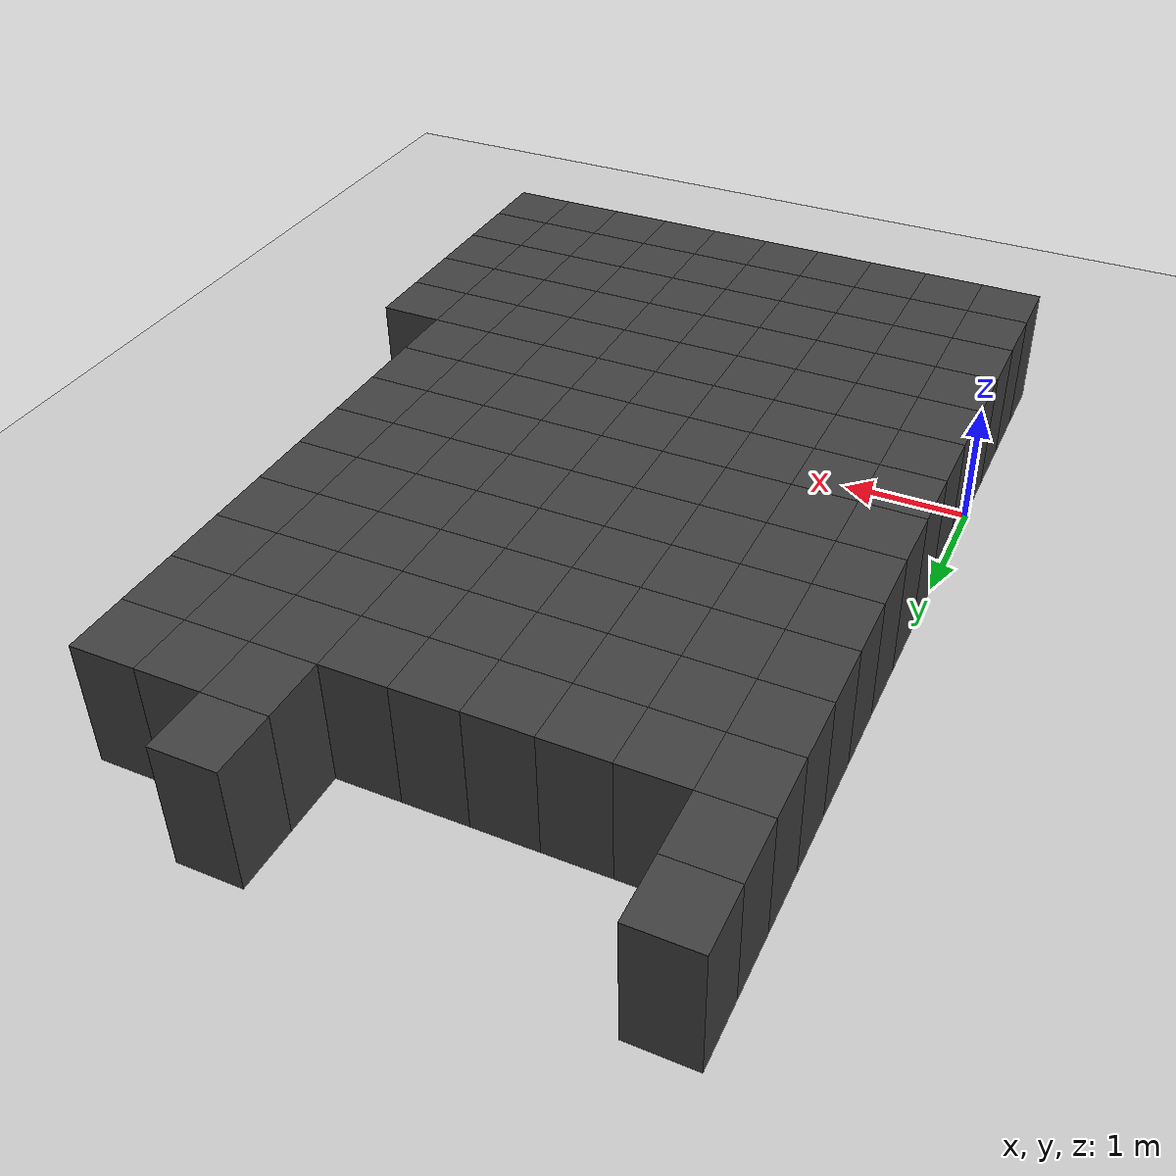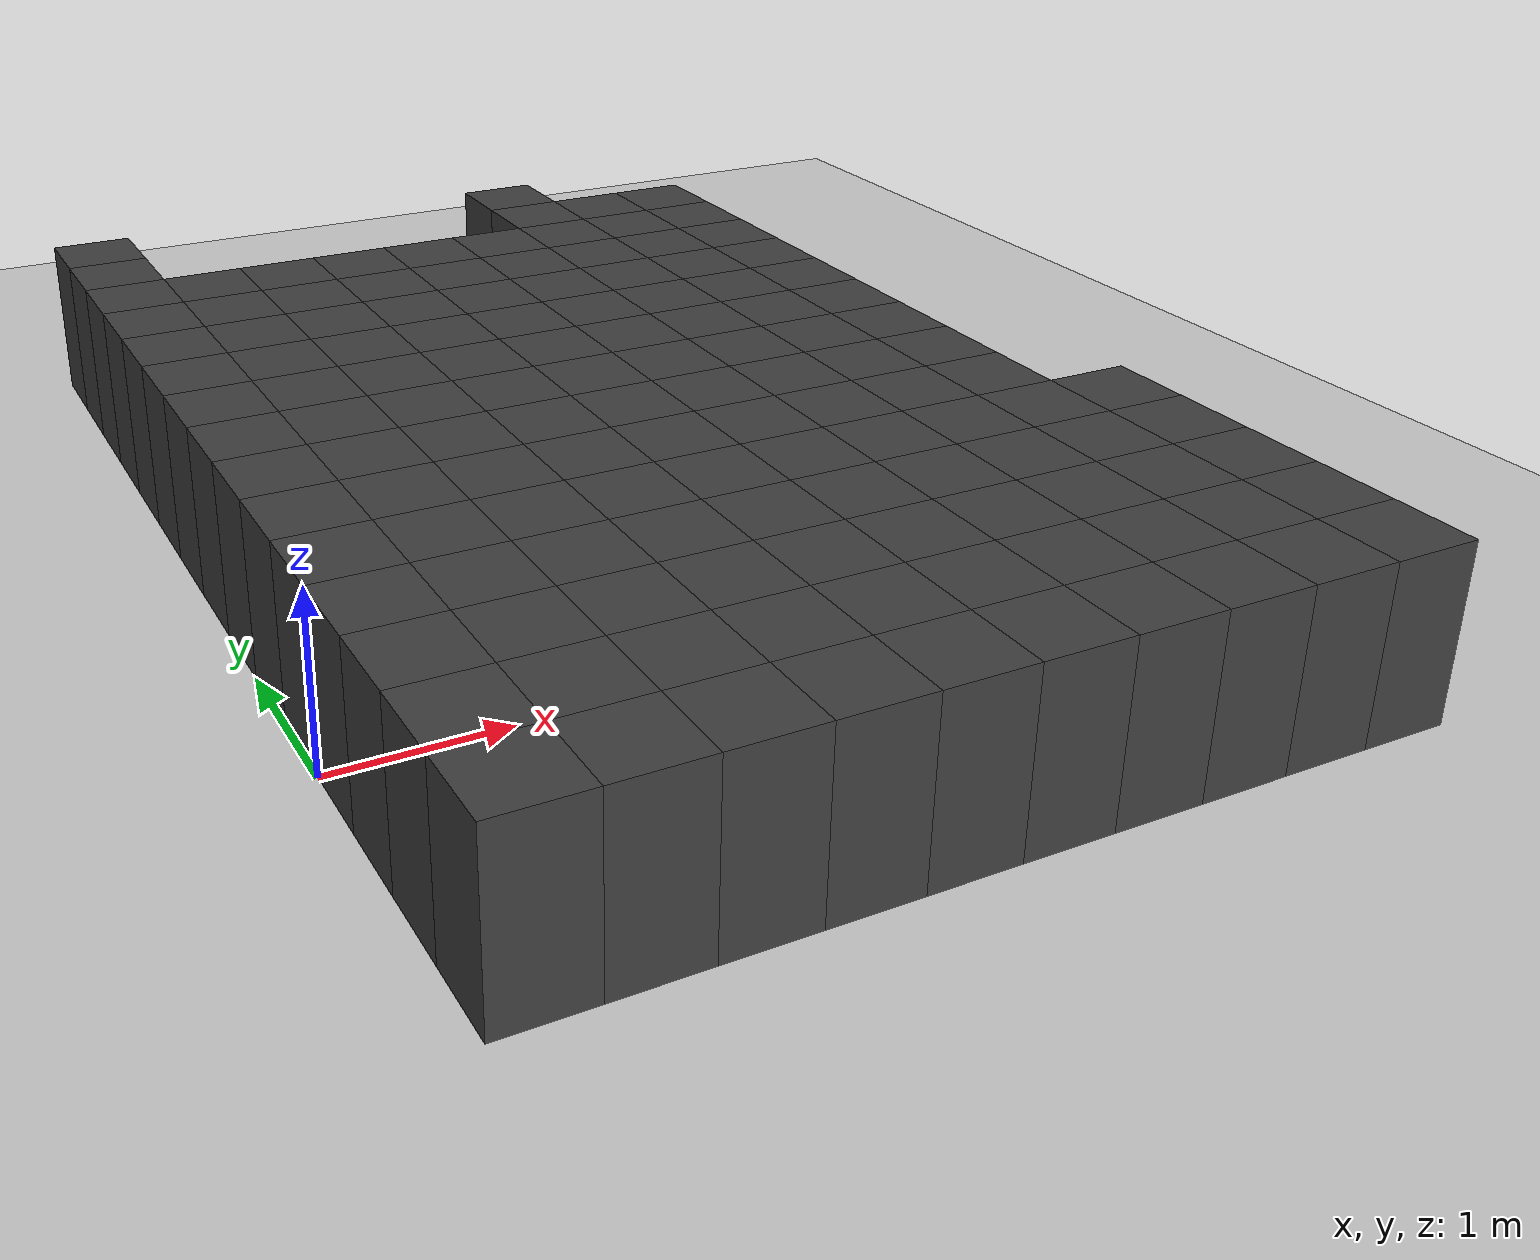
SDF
<sdf version="1.7">
 <world name="map_14056">
  <model name="ground_plane">
   <static>true</static>
   <link name="link">
    <collision name="collision">
     <geometry><plane><normal>0 0 1</normal><size>200 200</size></plane></geometry>
    </collision>
    <visual name="visual">
     <geometry><plane><normal>0 0 1</normal><size>200 200</size></plane></geometry>
     <material><ambient>0.8 0.8 0.8 1</ambient><diffuse>0.8 0.8 0.8 1</diffuse></material>
    </visual>
   </link>
  </model>
  <model name="maze_environment">
   <static>true</static>
   <link name="wall_478">
    <pose>0.250 5.250 0.500 0 0 0</pose>
    <collision name="col"><geometry><box><size>0.5 0.5 1.0</size></box></geometry></collision>
    <visual name="vis">
     <geometry><box><size>0.5 0.5 1.0</size></box></geometry>
     <material><ambient>0.15 0.15 0.15 1</ambient><diffuse>0.25 0.25 0.25 1</diffuse></material>
    </visual>
   </link>
   <link name="wall_479">
    <pose>3.250 5.250 0.500 0 0 0</pose>
    <collision name="col"><geometry><box><size>0.5 0.5 1.0</size></box></geometry></collision>
    <visual name="vis">
     <geometry><box><size>0.5 0.5 1.0</size></box></geometry>
     <material><ambient>0.15 0.15 0.15 1</ambient><diffuse>0.25 0.25 0.25 1</diffuse></material>
    </visual>
   </link>
   <link name="wall_507">
    <pose>0.250 4.750 0.500 0 0 0</pose>
    <collision name="col"><geometry><box><size>0.5 0.5 1.0</size></box></geometry></collision>
    <visual name="vis">
     <geometry><box><size>0.5 0.5 1.0</size></box></geometry>
     <material><ambient>0.15 0.15 0.15 1</ambient><diffuse>0.25 0.25 0.25 1</diffuse></material>
    </visual>
   </link>
   <link name="wall_508">
    <pose>3.250 4.750 0.500 0 0 0</pose>
    <collision name="col"><geometry><box><size>0.5 0.5 1.0</size></box></geometry></collision>
    <visual name="vis">
     <geometry><box><size>0.5 0.5 1.0</size></box></geometry>
     <material><ambient>0.15 0.15 0.15 1</ambient><diffuse>0.25 0.25 0.25 1</diffuse></material>
    </visual>
   </link>
   <link name="wall_509">
    <pose>3.750 4.750 0.500 0 0 0</pose>
    <collision name="col"><geometry><box><size>0.5 0.5 1.0</size></box></geometry></collision>
    <visual name="vis">
     <geometry><box><size>0.5 0.5 1.0</size></box></geometry>
     <material><ambient>0.15 0.15 0.15 1</ambient><diffuse>0.25 0.25 0.25 1</diffuse></material>
    </visual>
   </link>
   <link name="wall_510">
    <pose>4.250 4.750 0.500 0 0 0</pose>
    <collision name="col"><geometry><box><size>0.5 0.5 1.0</size></box></geometry></collision>
    <visual name="vis">
     <geometry><box><size>0.5 0.5 1.0</size></box></geometry>
     <material><ambient>0.15 0.15 0.15 1</ambient><diffuse>0.25 0.25 0.25 1</diffuse></material>
    </visual>
   </link>
   <link name="wall_544">
    <pose>0.250 4.250 0.500 0 0 0</pose>
    <collision name="col"><geometry><box><size>0.5 0.5 1.0</size></box></geometry></collision>
    <visual name="vis">
     <geometry><box><size>0.5 0.5 1.0</size></box></geometry>
     <material><ambient>0.15 0.15 0.15 1</ambient><diffuse>0.25 0.25 0.25 1</diffuse></material>
    </visual>
   </link>
   <link name="wall_545">
    <pose>0.750 4.250 0.500 0 0 0</pose>
    <collision name="col"><geometry><box><size>0.5 0.5 1.0</size></box></geometry></collision>
    <visual name="vis">
     <geometry><box><size>0.5 0.5 1.0</size></box></geometry>
     <material><ambient>0.15 0.15 0.15 1</ambient><diffuse>0.25 0.25 0.25 1</diffuse></material>
    </visual>
   </link>
   <link name="wall_546">
    <pose>1.250 4.250 0.500 0 0 0</pose>
    <collision name="col"><geometry><box><size>0.5 0.5 1.0</size></box></geometry></collision>
    <visual name="vis">
     <geometry><box><size>0.5 0.5 1.0</size></box></geometry>
     <material><ambient>0.15 0.15 0.15 1</ambient><diffuse>0.25 0.25 0.25 1</diffuse></material>
    </visual>
   </link>
   <link name="wall_547">
    <pose>1.750 4.250 0.500 0 0 0</pose>
    <collision name="col"><geometry><box><size>0.5 0.5 1.0</size></box></geometry></collision>
    <visual name="vis">
     <geometry><box><size>0.5 0.5 1.0</size></box></geometry>
     <material><ambient>0.15 0.15 0.15 1</ambient><diffuse>0.25 0.25 0.25 1</diffuse></material>
    </visual>
   </link>
   <link name="wall_548">
    <pose>2.250 4.250 0.500 0 0 0</pose>
    <collision name="col"><geometry><box><size>0.5 0.5 1.0</size></box></geometry></collision>
    <visual name="vis">
     <geometry><box><size>0.5 0.5 1.0</size></box></geometry>
     <material><ambient>0.15 0.15 0.15 1</ambient><diffuse>0.25 0.25 0.25 1</diffuse></material>
    </visual>
   </link>
   <link name="wall_549">
    <pose>2.750 4.250 0.500 0 0 0</pose>
    <collision name="col"><geometry><box><size>0.5 0.5 1.0</size></box></geometry></collision>
    <visual name="vis">
     <geometry><box><size>0.5 0.5 1.0</size></box></geometry>
     <material><ambient>0.15 0.15 0.15 1</ambient><diffuse>0.25 0.25 0.25 1</diffuse></material>
    </visual>
   </link>
   <link name="wall_550">
    <pose>3.250 4.250 0.500 0 0 0</pose>
    <collision name="col"><geometry><box><size>0.5 0.5 1.0</size></box></geometry></collision>
    <visual name="vis">
     <geometry><box><size>0.5 0.5 1.0</size></box></geometry>
     <material><ambient>0.15 0.15 0.15 1</ambient><diffuse>0.25 0.25 0.25 1</diffuse></material>
    </visual>
   </link>
   <link name="wall_551">
    <pose>3.750 4.250 0.500 0 0 0</pose>
    <collision name="col"><geometry><box><size>0.5 0.5 1.0</size></box></geometry></collision>
    <visual name="vis">
     <geometry><box><size>0.5 0.5 1.0</size></box></geometry>
     <material><ambient>0.15 0.15 0.15 1</ambient><diffuse>0.25 0.25 0.25 1</diffuse></material>
    </visual>
   </link>
   <link name="wall_552">
    <pose>4.250 4.250 0.500 0 0 0</pose>
    <collision name="col"><geometry><box><size>0.5 0.5 1.0</size></box></geometry></collision>
    <visual name="vis">
     <geometry><box><size>0.5 0.5 1.0</size></box></geometry>
     <material><ambient>0.15 0.15 0.15 1</ambient><diffuse>0.25 0.25 0.25 1</diffuse></material>
    </visual>
   </link>
   <link name="wall_586">
    <pose>0.250 3.750 0.500 0 0 0</pose>
    <collision name="col"><geometry><box><size>0.5 0.5 1.0</size></box></geometry></collision>
    <visual name="vis">
     <geometry><box><size>0.5 0.5 1.0</size></box></geometry>
     <material><ambient>0.15 0.15 0.15 1</ambient><diffuse>0.25 0.25 0.25 1</diffuse></material>
    </visual>
   </link>
   <link name="wall_587">
    <pose>0.750 3.750 0.500 0 0 0</pose>
    <collision name="col"><geometry><box><size>0.5 0.5 1.0</size></box></geometry></collision>
    <visual name="vis">
     <geometry><box><size>0.5 0.5 1.0</size></box></geometry>
     <material><ambient>0.15 0.15 0.15 1</ambient><diffuse>0.25 0.25 0.25 1</diffuse></material>
    </visual>
   </link>
   <link name="wall_588">
    <pose>1.250 3.750 0.500 0 0 0</pose>
    <collision name="col"><geometry><box><size>0.5 0.5 1.0</size></box></geometry></collision>
    <visual name="vis">
     <geometry><box><size>0.5 0.5 1.0</size></box></geometry>
     <material><ambient>0.15 0.15 0.15 1</ambient><diffuse>0.25 0.25 0.25 1</diffuse></material>
    </visual>
   </link>
   <link name="wall_589">
    <pose>1.750 3.750 0.500 0 0 0</pose>
    <collision name="col"><geometry><box><size>0.5 0.5 1.0</size></box></geometry></collision>
    <visual name="vis">
     <geometry><box><size>0.5 0.5 1.0</size></box></geometry>
     <material><ambient>0.15 0.15 0.15 1</ambient><diffuse>0.25 0.25 0.25 1</diffuse></material>
    </visual>
   </link>
   <link name="wall_590">
    <pose>2.250 3.750 0.500 0 0 0</pose>
    <collision name="col"><geometry><box><size>0.5 0.5 1.0</size></box></geometry></collision>
    <visual name="vis">
     <geometry><box><size>0.5 0.5 1.0</size></box></geometry>
     <material><ambient>0.15 0.15 0.15 1</ambient><diffuse>0.25 0.25 0.25 1</diffuse></material>
    </visual>
   </link>
   <link name="wall_591">
    <pose>2.750 3.750 0.500 0 0 0</pose>
    <collision name="col"><geometry><box><size>0.5 0.5 1.0</size></box></geometry></collision>
    <visual name="vis">
     <geometry><box><size>0.5 0.5 1.0</size></box></geometry>
     <material><ambient>0.15 0.15 0.15 1</ambient><diffuse>0.25 0.25 0.25 1</diffuse></material>
    </visual>
   </link>
   <link name="wall_592">
    <pose>3.250 3.750 0.500 0 0 0</pose>
    <collision name="col"><geometry><box><size>0.5 0.5 1.0</size></box></geometry></collision>
    <visual name="vis">
     <geometry><box><size>0.5 0.5 1.0</size></box></geometry>
     <material><ambient>0.15 0.15 0.15 1</ambient><diffuse>0.25 0.25 0.25 1</diffuse></material>
    </visual>
   </link>
   <link name="wall_593">
    <pose>3.750 3.750 0.500 0 0 0</pose>
    <collision name="col"><geometry><box><size>0.5 0.5 1.0</size></box></geometry></collision>
    <visual name="vis">
     <geometry><box><size>0.5 0.5 1.0</size></box></geometry>
     <material><ambient>0.15 0.15 0.15 1</ambient><diffuse>0.25 0.25 0.25 1</diffuse></material>
    </visual>
   </link>
   <link name="wall_594">
    <pose>4.250 3.750 0.500 0 0 0</pose>
    <collision name="col"><geometry><box><size>0.5 0.5 1.0</size></box></geometry></collision>
    <visual name="vis">
     <geometry><box><size>0.5 0.5 1.0</size></box></geometry>
     <material><ambient>0.15 0.15 0.15 1</ambient><diffuse>0.25 0.25 0.25 1</diffuse></material>
    </visual>
   </link>
   <link name="wall_623">
    <pose>0.250 3.250 0.500 0 0 0</pose>
    <collision name="col"><geometry><box><size>0.5 0.5 1.0</size></box></geometry></collision>
    <visual name="vis">
     <geometry><box><size>0.5 0.5 1.0</size></box></geometry>
     <material><ambient>0.15 0.15 0.15 1</ambient><diffuse>0.25 0.25 0.25 1</diffuse></material>
    </visual>
   </link>
   <link name="wall_624">
    <pose>0.750 3.250 0.500 0 0 0</pose>
    <collision name="col"><geometry><box><size>0.5 0.5 1.0</size></box></geometry></collision>
    <visual name="vis">
     <geometry><box><size>0.5 0.5 1.0</size></box></geometry>
     <material><ambient>0.15 0.15 0.15 1</ambient><diffuse>0.25 0.25 0.25 1</diffuse></material>
    </visual>
   </link>
   <link name="wall_625">
    <pose>1.250 3.250 0.500 0 0 0</pose>
    <collision name="col"><geometry><box><size>0.5 0.5 1.0</size></box></geometry></collision>
    <visual name="vis">
     <geometry><box><size>0.5 0.5 1.0</size></box></geometry>
     <material><ambient>0.15 0.15 0.15 1</ambient><diffuse>0.25 0.25 0.25 1</diffuse></material>
    </visual>
   </link>
   <link name="wall_626">
    <pose>1.750 3.250 0.500 0 0 0</pose>
    <collision name="col"><geometry><box><size>0.5 0.5 1.0</size></box></geometry></collision>
    <visual name="vis">
     <geometry><box><size>0.5 0.5 1.0</size></box></geometry>
     <material><ambient>0.15 0.15 0.15 1</ambient><diffuse>0.25 0.25 0.25 1</diffuse></material>
    </visual>
   </link>
   <link name="wall_627">
    <pose>2.250 3.250 0.500 0 0 0</pose>
    <collision name="col"><geometry><box><size>0.5 0.5 1.0</size></box></geometry></collision>
    <visual name="vis">
     <geometry><box><size>0.5 0.5 1.0</size></box></geometry>
     <material><ambient>0.15 0.15 0.15 1</ambient><diffuse>0.25 0.25 0.25 1</diffuse></material>
    </visual>
   </link>
   <link name="wall_628">
    <pose>2.750 3.250 0.500 0 0 0</pose>
    <collision name="col"><geometry><box><size>0.5 0.5 1.0</size></box></geometry></collision>
    <visual name="vis">
     <geometry><box><size>0.5 0.5 1.0</size></box></geometry>
     <material><ambient>0.15 0.15 0.15 1</ambient><diffuse>0.25 0.25 0.25 1</diffuse></material>
    </visual>
   </link>
   <link name="wall_629">
    <pose>3.250 3.250 0.500 0 0 0</pose>
    <collision name="col"><geometry><box><size>0.5 0.5 1.0</size></box></geometry></collision>
    <visual name="vis">
     <geometry><box><size>0.5 0.5 1.0</size></box></geometry>
     <material><ambient>0.15 0.15 0.15 1</ambient><diffuse>0.25 0.25 0.25 1</diffuse></material>
    </visual>
   </link>
   <link name="wall_630">
    <pose>3.750 3.250 0.500 0 0 0</pose>
    <collision name="col"><geometry><box><size>0.5 0.5 1.0</size></box></geometry></collision>
    <visual name="vis">
     <geometry><box><size>0.5 0.5 1.0</size></box></geometry>
     <material><ambient>0.15 0.15 0.15 1</ambient><diffuse>0.25 0.25 0.25 1</diffuse></material>
    </visual>
   </link>
   <link name="wall_631">
    <pose>4.250 3.250 0.500 0 0 0</pose>
    <collision name="col"><geometry><box><size>0.5 0.5 1.0</size></box></geometry></collision>
    <visual name="vis">
     <geometry><box><size>0.5 0.5 1.0</size></box></geometry>
     <material><ambient>0.15 0.15 0.15 1</ambient><diffuse>0.25 0.25 0.25 1</diffuse></material>
    </visual>
   </link>
   <link name="wall_657">
    <pose>0.250 2.750 0.500 0 0 0</pose>
    <collision name="col"><geometry><box><size>0.5 0.5 1.0</size></box></geometry></collision>
    <visual name="vis">
     <geometry><box><size>0.5 0.5 1.0</size></box></geometry>
     <material><ambient>0.15 0.15 0.15 1</ambient><diffuse>0.25 0.25 0.25 1</diffuse></material>
    </visual>
   </link>
   <link name="wall_658">
    <pose>0.750 2.750 0.500 0 0 0</pose>
    <collision name="col"><geometry><box><size>0.5 0.5 1.0</size></box></geometry></collision>
    <visual name="vis">
     <geometry><box><size>0.5 0.5 1.0</size></box></geometry>
     <material><ambient>0.15 0.15 0.15 1</ambient><diffuse>0.25 0.25 0.25 1</diffuse></material>
    </visual>
   </link>
   <link name="wall_659">
    <pose>1.250 2.750 0.500 0 0 0</pose>
    <collision name="col"><geometry><box><size>0.5 0.5 1.0</size></box></geometry></collision>
    <visual name="vis">
     <geometry><box><size>0.5 0.5 1.0</size></box></geometry>
     <material><ambient>0.15 0.15 0.15 1</ambient><diffuse>0.25 0.25 0.25 1</diffuse></material>
    </visual>
   </link>
   <link name="wall_660">
    <pose>1.750 2.750 0.500 0 0 0</pose>
    <collision name="col"><geometry><box><size>0.5 0.5 1.0</size></box></geometry></collision>
    <visual name="vis">
     <geometry><box><size>0.5 0.5 1.0</size></box></geometry>
     <material><ambient>0.15 0.15 0.15 1</ambient><diffuse>0.25 0.25 0.25 1</diffuse></material>
    </visual>
   </link>
   <link name="wall_661">
    <pose>2.250 2.750 0.500 0 0 0</pose>
    <collision name="col"><geometry><box><size>0.5 0.5 1.0</size></box></geometry></collision>
    <visual name="vis">
     <geometry><box><size>0.5 0.5 1.0</size></box></geometry>
     <material><ambient>0.15 0.15 0.15 1</ambient><diffuse>0.25 0.25 0.25 1</diffuse></material>
    </visual>
   </link>
   <link name="wall_662">
    <pose>2.750 2.750 0.500 0 0 0</pose>
    <collision name="col"><geometry><box><size>0.5 0.5 1.0</size></box></geometry></collision>
    <visual name="vis">
     <geometry><box><size>0.5 0.5 1.0</size></box></geometry>
     <material><ambient>0.15 0.15 0.15 1</ambient><diffuse>0.25 0.25 0.25 1</diffuse></material>
    </visual>
   </link>
   <link name="wall_663">
    <pose>3.250 2.750 0.500 0 0 0</pose>
    <collision name="col"><geometry><box><size>0.5 0.5 1.0</size></box></geometry></collision>
    <visual name="vis">
     <geometry><box><size>0.5 0.5 1.0</size></box></geometry>
     <material><ambient>0.15 0.15 0.15 1</ambient><diffuse>0.25 0.25 0.25 1</diffuse></material>
    </visual>
   </link>
   <link name="wall_664">
    <pose>3.750 2.750 0.500 0 0 0</pose>
    <collision name="col"><geometry><box><size>0.5 0.5 1.0</size></box></geometry></collision>
    <visual name="vis">
     <geometry><box><size>0.5 0.5 1.0</size></box></geometry>
     <material><ambient>0.15 0.15 0.15 1</ambient><diffuse>0.25 0.25 0.25 1</diffuse></material>
    </visual>
   </link>
   <link name="wall_665">
    <pose>4.250 2.750 0.500 0 0 0</pose>
    <collision name="col"><geometry><box><size>0.5 0.5 1.0</size></box></geometry></collision>
    <visual name="vis">
     <geometry><box><size>0.5 0.5 1.0</size></box></geometry>
     <material><ambient>0.15 0.15 0.15 1</ambient><diffuse>0.25 0.25 0.25 1</diffuse></material>
    </visual>
   </link>
   <link name="wall_697">
    <pose>0.250 2.250 0.500 0 0 0</pose>
    <collision name="col"><geometry><box><size>0.5 0.5 1.0</size></box></geometry></collision>
    <visual name="vis">
     <geometry><box><size>0.5 0.5 1.0</size></box></geometry>
     <material><ambient>0.15 0.15 0.15 1</ambient><diffuse>0.25 0.25 0.25 1</diffuse></material>
    </visual>
   </link>
   <link name="wall_698">
    <pose>0.750 2.250 0.500 0 0 0</pose>
    <collision name="col"><geometry><box><size>0.5 0.5 1.0</size></box></geometry></collision>
    <visual name="vis">
     <geometry><box><size>0.5 0.5 1.0</size></box></geometry>
     <material><ambient>0.15 0.15 0.15 1</ambient><diffuse>0.25 0.25 0.25 1</diffuse></material>
    </visual>
   </link>
   <link name="wall_699">
    <pose>1.250 2.250 0.500 0 0 0</pose>
    <collision name="col"><geometry><box><size>0.5 0.5 1.0</size></box></geometry></collision>
    <visual name="vis">
     <geometry><box><size>0.5 0.5 1.0</size></box></geometry>
     <material><ambient>0.15 0.15 0.15 1</ambient><diffuse>0.25 0.25 0.25 1</diffuse></material>
    </visual>
   </link>
   <link name="wall_700">
    <pose>1.750 2.250 0.500 0 0 0</pose>
    <collision name="col"><geometry><box><size>0.5 0.5 1.0</size></box></geometry></collision>
    <visual name="vis">
     <geometry><box><size>0.5 0.5 1.0</size></box></geometry>
     <material><ambient>0.15 0.15 0.15 1</ambient><diffuse>0.25 0.25 0.25 1</diffuse></material>
    </visual>
   </link>
   <link name="wall_701">
    <pose>2.250 2.250 0.500 0 0 0</pose>
    <collision name="col"><geometry><box><size>0.5 0.5 1.0</size></box></geometry></collision>
    <visual name="vis">
     <geometry><box><size>0.5 0.5 1.0</size></box></geometry>
     <material><ambient>0.15 0.15 0.15 1</ambient><diffuse>0.25 0.25 0.25 1</diffuse></material>
    </visual>
   </link>
   <link name="wall_702">
    <pose>2.750 2.250 0.500 0 0 0</pose>
    <collision name="col"><geometry><box><size>0.5 0.5 1.0</size></box></geometry></collision>
    <visual name="vis">
     <geometry><box><size>0.5 0.5 1.0</size></box></geometry>
     <material><ambient>0.15 0.15 0.15 1</ambient><diffuse>0.25 0.25 0.25 1</diffuse></material>
    </visual>
   </link>
   <link name="wall_703">
    <pose>3.250 2.250 0.500 0 0 0</pose>
    <collision name="col"><geometry><box><size>0.5 0.5 1.0</size></box></geometry></collision>
    <visual name="vis">
     <geometry><box><size>0.5 0.5 1.0</size></box></geometry>
     <material><ambient>0.15 0.15 0.15 1</ambient><diffuse>0.25 0.25 0.25 1</diffuse></material>
    </visual>
   </link>
   <link name="wall_704">
    <pose>3.750 2.250 0.500 0 0 0</pose>
    <collision name="col"><geometry><box><size>0.5 0.5 1.0</size></box></geometry></collision>
    <visual name="vis">
     <geometry><box><size>0.5 0.5 1.0</size></box></geometry>
     <material><ambient>0.15 0.15 0.15 1</ambient><diffuse>0.25 0.25 0.25 1</diffuse></material>
    </visual>
   </link>
   <link name="wall_705">
    <pose>4.250 2.250 0.500 0 0 0</pose>
    <collision name="col"><geometry><box><size>0.5 0.5 1.0</size></box></geometry></collision>
    <visual name="vis">
     <geometry><box><size>0.5 0.5 1.0</size></box></geometry>
     <material><ambient>0.15 0.15 0.15 1</ambient><diffuse>0.25 0.25 0.25 1</diffuse></material>
    </visual>
   </link>
   <link name="wall_738">
    <pose>0.250 1.750 0.500 0 0 0</pose>
    <collision name="col"><geometry><box><size>0.5 0.5 1.0</size></box></geometry></collision>
    <visual name="vis">
     <geometry><box><size>0.5 0.5 1.0</size></box></geometry>
     <material><ambient>0.15 0.15 0.15 1</ambient><diffuse>0.25 0.25 0.25 1</diffuse></material>
    </visual>
   </link>
   <link name="wall_739">
    <pose>0.750 1.750 0.500 0 0 0</pose>
    <collision name="col"><geometry><box><size>0.5 0.5 1.0</size></box></geometry></collision>
    <visual name="vis">
     <geometry><box><size>0.5 0.5 1.0</size></box></geometry>
     <material><ambient>0.15 0.15 0.15 1</ambient><diffuse>0.25 0.25 0.25 1</diffuse></material>
    </visual>
   </link>
   <link name="wall_740">
    <pose>1.250 1.750 0.500 0 0 0</pose>
    <collision name="col"><geometry><box><size>0.5 0.5 1.0</size></box></geometry></collision>
    <visual name="vis">
     <geometry><box><size>0.5 0.5 1.0</size></box></geometry>
     <material><ambient>0.15 0.15 0.15 1</ambient><diffuse>0.25 0.25 0.25 1</diffuse></material>
    </visual>
   </link>
   <link name="wall_741">
    <pose>1.750 1.750 0.500 0 0 0</pose>
    <collision name="col"><geometry><box><size>0.5 0.5 1.0</size></box></geometry></collision>
    <visual name="vis">
     <geometry><box><size>0.5 0.5 1.0</size></box></geometry>
     <material><ambient>0.15 0.15 0.15 1</ambient><diffuse>0.25 0.25 0.25 1</diffuse></material>
    </visual>
   </link>
   <link name="wall_742">
    <pose>2.250 1.750 0.500 0 0 0</pose>
    <collision name="col"><geometry><box><size>0.5 0.5 1.0</size></box></geometry></collision>
    <visual name="vis">
     <geometry><box><size>0.5 0.5 1.0</size></box></geometry>
     <material><ambient>0.15 0.15 0.15 1</ambient><diffuse>0.25 0.25 0.25 1</diffuse></material>
    </visual>
   </link>
   <link name="wall_743">
    <pose>2.750 1.750 0.500 0 0 0</pose>
    <collision name="col"><geometry><box><size>0.5 0.5 1.0</size></box></geometry></collision>
    <visual name="vis">
     <geometry><box><size>0.5 0.5 1.0</size></box></geometry>
     <material><ambient>0.15 0.15 0.15 1</ambient><diffuse>0.25 0.25 0.25 1</diffuse></material>
    </visual>
   </link>
   <link name="wall_744">
    <pose>3.250 1.750 0.500 0 0 0</pose>
    <collision name="col"><geometry><box><size>0.5 0.5 1.0</size></box></geometry></collision>
    <visual name="vis">
     <geometry><box><size>0.5 0.5 1.0</size></box></geometry>
     <material><ambient>0.15 0.15 0.15 1</ambient><diffuse>0.25 0.25 0.25 1</diffuse></material>
    </visual>
   </link>
   <link name="wall_745">
    <pose>3.750 1.750 0.500 0 0 0</pose>
    <collision name="col"><geometry><box><size>0.5 0.5 1.0</size></box></geometry></collision>
    <visual name="vis">
     <geometry><box><size>0.5 0.5 1.0</size></box></geometry>
     <material><ambient>0.15 0.15 0.15 1</ambient><diffuse>0.25 0.25 0.25 1</diffuse></material>
    </visual>
   </link>
   <link name="wall_746">
    <pose>4.250 1.750 0.500 0 0 0</pose>
    <collision name="col"><geometry><box><size>0.5 0.5 1.0</size></box></geometry></collision>
    <visual name="vis">
     <geometry><box><size>0.5 0.5 1.0</size></box></geometry>
     <material><ambient>0.15 0.15 0.15 1</ambient><diffuse>0.25 0.25 0.25 1</diffuse></material>
    </visual>
   </link>
   <link name="wall_779">
    <pose>0.250 1.250 0.500 0 0 0</pose>
    <collision name="col"><geometry><box><size>0.5 0.5 1.0</size></box></geometry></collision>
    <visual name="vis">
     <geometry><box><size>0.5 0.5 1.0</size></box></geometry>
     <material><ambient>0.15 0.15 0.15 1</ambient><diffuse>0.25 0.25 0.25 1</diffuse></material>
    </visual>
   </link>
   <link name="wall_780">
    <pose>0.750 1.250 0.500 0 0 0</pose>
    <collision name="col"><geometry><box><size>0.5 0.5 1.0</size></box></geometry></collision>
    <visual name="vis">
     <geometry><box><size>0.5 0.5 1.0</size></box></geometry>
     <material><ambient>0.15 0.15 0.15 1</ambient><diffuse>0.25 0.25 0.25 1</diffuse></material>
    </visual>
   </link>
   <link name="wall_781">
    <pose>1.250 1.250 0.500 0 0 0</pose>
    <collision name="col"><geometry><box><size>0.5 0.5 1.0</size></box></geometry></collision>
    <visual name="vis">
     <geometry><box><size>0.5 0.5 1.0</size></box></geometry>
     <material><ambient>0.15 0.15 0.15 1</ambient><diffuse>0.25 0.25 0.25 1</diffuse></material>
    </visual>
   </link>
   <link name="wall_782">
    <pose>1.750 1.250 0.500 0 0 0</pose>
    <collision name="col"><geometry><box><size>0.5 0.5 1.0</size></box></geometry></collision>
    <visual name="vis">
     <geometry><box><size>0.5 0.5 1.0</size></box></geometry>
     <material><ambient>0.15 0.15 0.15 1</ambient><diffuse>0.25 0.25 0.25 1</diffuse></material>
    </visual>
   </link>
   <link name="wall_783">
    <pose>2.250 1.250 0.500 0 0 0</pose>
    <collision name="col"><geometry><box><size>0.5 0.5 1.0</size></box></geometry></collision>
    <visual name="vis">
     <geometry><box><size>0.5 0.5 1.0</size></box></geometry>
     <material><ambient>0.15 0.15 0.15 1</ambient><diffuse>0.25 0.25 0.25 1</diffuse></material>
    </visual>
   </link>
   <link name="wall_784">
    <pose>2.750 1.250 0.500 0 0 0</pose>
    <collision name="col"><geometry><box><size>0.5 0.5 1.0</size></box></geometry></collision>
    <visual name="vis">
     <geometry><box><size>0.5 0.5 1.0</size></box></geometry>
     <material><ambient>0.15 0.15 0.15 1</ambient><diffuse>0.25 0.25 0.25 1</diffuse></material>
    </visual>
   </link>
   <link name="wall_785">
    <pose>3.250 1.250 0.500 0 0 0</pose>
    <collision name="col"><geometry><box><size>0.5 0.5 1.0</size></box></geometry></collision>
    <visual name="vis">
     <geometry><box><size>0.5 0.5 1.0</size></box></geometry>
     <material><ambient>0.15 0.15 0.15 1</ambient><diffuse>0.25 0.25 0.25 1</diffuse></material>
    </visual>
   </link>
   <link name="wall_786">
    <pose>3.750 1.250 0.500 0 0 0</pose>
    <collision name="col"><geometry><box><size>0.5 0.5 1.0</size></box></geometry></collision>
    <visual name="vis">
     <geometry><box><size>0.5 0.5 1.0</size></box></geometry>
     <material><ambient>0.15 0.15 0.15 1</ambient><diffuse>0.25 0.25 0.25 1</diffuse></material>
    </visual>
   </link>
   <link name="wall_787">
    <pose>4.250 1.250 0.500 0 0 0</pose>
    <collision name="col"><geometry><box><size>0.5 0.5 1.0</size></box></geometry></collision>
    <visual name="vis">
     <geometry><box><size>0.5 0.5 1.0</size></box></geometry>
     <material><ambient>0.15 0.15 0.15 1</ambient><diffuse>0.25 0.25 0.25 1</diffuse></material>
    </visual>
   </link>
   <link name="wall_820">
    <pose>0.250 0.750 0.500 0 0 0</pose>
    <collision name="col"><geometry><box><size>0.5 0.5 1.0</size></box></geometry></collision>
    <visual name="vis">
     <geometry><box><size>0.5 0.5 1.0</size></box></geometry>
     <material><ambient>0.15 0.15 0.15 1</ambient><diffuse>0.25 0.25 0.25 1</diffuse></material>
    </visual>
   </link>
   <link name="wall_821">
    <pose>0.750 0.750 0.500 0 0 0</pose>
    <collision name="col"><geometry><box><size>0.5 0.5 1.0</size></box></geometry></collision>
    <visual name="vis">
     <geometry><box><size>0.5 0.5 1.0</size></box></geometry>
     <material><ambient>0.15 0.15 0.15 1</ambient><diffuse>0.25 0.25 0.25 1</diffuse></material>
    </visual>
   </link>
   <link name="wall_822">
    <pose>1.250 0.750 0.500 0 0 0</pose>
    <collision name="col"><geometry><box><size>0.5 0.5 1.0</size></box></geometry></collision>
    <visual name="vis">
     <geometry><box><size>0.5 0.5 1.0</size></box></geometry>
     <material><ambient>0.15 0.15 0.15 1</ambient><diffuse>0.25 0.25 0.25 1</diffuse></material>
    </visual>
   </link>
   <link name="wall_823">
    <pose>1.750 0.750 0.500 0 0 0</pose>
    <collision name="col"><geometry><box><size>0.5 0.5 1.0</size></box></geometry></collision>
    <visual name="vis">
     <geometry><box><size>0.5 0.5 1.0</size></box></geometry>
     <material><ambient>0.15 0.15 0.15 1</ambient><diffuse>0.25 0.25 0.25 1</diffuse></material>
    </visual>
   </link>
   <link name="wall_824">
    <pose>2.250 0.750 0.500 0 0 0</pose>
    <collision name="col"><geometry><box><size>0.5 0.5 1.0</size></box></geometry></collision>
    <visual name="vis">
     <geometry><box><size>0.5 0.5 1.0</size></box></geometry>
     <material><ambient>0.15 0.15 0.15 1</ambient><diffuse>0.25 0.25 0.25 1</diffuse></material>
    </visual>
   </link>
   <link name="wall_825">
    <pose>2.750 0.750 0.500 0 0 0</pose>
    <collision name="col"><geometry><box><size>0.5 0.5 1.0</size></box></geometry></collision>
    <visual name="vis">
     <geometry><box><size>0.5 0.5 1.0</size></box></geometry>
     <material><ambient>0.15 0.15 0.15 1</ambient><diffuse>0.25 0.25 0.25 1</diffuse></material>
    </visual>
   </link>
   <link name="wall_826">
    <pose>3.250 0.750 0.500 0 0 0</pose>
    <collision name="col"><geometry><box><size>0.5 0.5 1.0</size></box></geometry></collision>
    <visual name="vis">
     <geometry><box><size>0.5 0.5 1.0</size></box></geometry>
     <material><ambient>0.15 0.15 0.15 1</ambient><diffuse>0.25 0.25 0.25 1</diffuse></material>
    </visual>
   </link>
   <link name="wall_827">
    <pose>3.750 0.750 0.500 0 0 0</pose>
    <collision name="col"><geometry><box><size>0.5 0.5 1.0</size></box></geometry></collision>
    <visual name="vis">
     <geometry><box><size>0.5 0.5 1.0</size></box></geometry>
     <material><ambient>0.15 0.15 0.15 1</ambient><diffuse>0.25 0.25 0.25 1</diffuse></material>
    </visual>
   </link>
   <link name="wall_828">
    <pose>4.250 0.750 0.500 0 0 0</pose>
    <collision name="col"><geometry><box><size>0.5 0.5 1.0</size></box></geometry></collision>
    <visual name="vis">
     <geometry><box><size>0.5 0.5 1.0</size></box></geometry>
     <material><ambient>0.15 0.15 0.15 1</ambient><diffuse>0.25 0.25 0.25 1</diffuse></material>
    </visual>
   </link>
   <link name="wall_861">
    <pose>0.250 0.250 0.500 0 0 0</pose>
    <collision name="col"><geometry><box><size>0.5 0.5 1.0</size></box></geometry></collision>
    <visual name="vis">
     <geometry><box><size>0.5 0.5 1.0</size></box></geometry>
     <material><ambient>0.15 0.15 0.15 1</ambient><diffuse>0.25 0.25 0.25 1</diffuse></material>
    </visual>
   </link>
   <link name="wall_862">
    <pose>0.750 0.250 0.500 0 0 0</pose>
    <collision name="col"><geometry><box><size>0.5 0.5 1.0</size></box></geometry></collision>
    <visual name="vis">
     <geometry><box><size>0.5 0.5 1.0</size></box></geometry>
     <material><ambient>0.15 0.15 0.15 1</ambient><diffuse>0.25 0.25 0.25 1</diffuse></material>
    </visual>
   </link>
   <link name="wall_863">
    <pose>1.250 0.250 0.500 0 0 0</pose>
    <collision name="col"><geometry><box><size>0.5 0.5 1.0</size></box></geometry></collision>
    <visual name="vis">
     <geometry><box><size>0.5 0.5 1.0</size></box></geometry>
     <material><ambient>0.15 0.15 0.15 1</ambient><diffuse>0.25 0.25 0.25 1</diffuse></material>
    </visual>
   </link>
   <link name="wall_864">
    <pose>1.750 0.250 0.500 0 0 0</pose>
    <collision name="col"><geometry><box><size>0.5 0.5 1.0</size></box></geometry></collision>
    <visual name="vis">
     <geometry><box><size>0.5 0.5 1.0</size></box></geometry>
     <material><ambient>0.15 0.15 0.15 1</ambient><diffuse>0.25 0.25 0.25 1</diffuse></material>
    </visual>
   </link>
   <link name="wall_865">
    <pose>2.250 0.250 0.500 0 0 0</pose>
    <collision name="col"><geometry><box><size>0.5 0.5 1.0</size></box></geometry></collision>
    <visual name="vis">
     <geometry><box><size>0.5 0.5 1.0</size></box></geometry>
     <material><ambient>0.15 0.15 0.15 1</ambient><diffuse>0.25 0.25 0.25 1</diffuse></material>
    </visual>
   </link>
   <link name="wall_866">
    <pose>2.750 0.250 0.500 0 0 0</pose>
    <collision name="col"><geometry><box><size>0.5 0.5 1.0</size></box></geometry></collision>
    <visual name="vis">
     <geometry><box><size>0.5 0.5 1.0</size></box></geometry>
     <material><ambient>0.15 0.15 0.15 1</ambient><diffuse>0.25 0.25 0.25 1</diffuse></material>
    </visual>
   </link>
   <link name="wall_867">
    <pose>3.250 0.250 0.500 0 0 0</pose>
    <collision name="col"><geometry><box><size>0.5 0.5 1.0</size></box></geometry></collision>
    <visual name="vis">
     <geometry><box><size>0.5 0.5 1.0</size></box></geometry>
     <material><ambient>0.15 0.15 0.15 1</ambient><diffuse>0.25 0.25 0.25 1</diffuse></material>
    </visual>
   </link>
   <link name="wall_868">
    <pose>3.750 0.250 0.500 0 0 0</pose>
    <collision name="col"><geometry><box><size>0.5 0.5 1.0</size></box></geometry></collision>
    <visual name="vis">
     <geometry><box><size>0.5 0.5 1.0</size></box></geometry>
     <material><ambient>0.15 0.15 0.15 1</ambient><diffuse>0.25 0.25 0.25 1</diffuse></material>
    </visual>
   </link>
   <link name="wall_869">
    <pose>4.250 0.250 0.500 0 0 0</pose>
    <collision name="col"><geometry><box><size>0.5 0.5 1.0</size></box></geometry></collision>
    <visual name="vis">
     <geometry><box><size>0.5 0.5 1.0</size></box></geometry>
     <material><ambient>0.15 0.15 0.15 1</ambient><diffuse>0.25 0.25 0.25 1</diffuse></material>
    </visual>
   </link>
   <link name="wall_870">
    <pose>4.750 0.250 0.500 0 0 0</pose>
    <collision name="col"><geometry><box><size>0.5 0.5 1.0</size></box></geometry></collision>
    <visual name="vis">
     <geometry><box><size>0.5 0.5 1.0</size></box></geometry>
     <material><ambient>0.15 0.15 0.15 1</ambient><diffuse>0.25 0.25 0.25 1</diffuse></material>
    </visual>
   </link>
   <link name="wall_902">
    <pose>0.250 -0.250 0.500 0 0 0</pose>
    <collision name="col"><geometry><box><size>0.5 0.5 1.0</size></box></geometry></collision>
    <visual name="vis">
     <geometry><box><size>0.5 0.5 1.0</size></box></geometry>
     <material><ambient>0.15 0.15 0.15 1</ambient><diffuse>0.25 0.25 0.25 1</diffuse></material>
    </visual>
   </link>
   <link name="wall_903">
    <pose>0.750 -0.250 0.500 0 0 0</pose>
    <collision name="col"><geometry><box><size>0.5 0.5 1.0</size></box></geometry></collision>
    <visual name="vis">
     <geometry><box><size>0.5 0.5 1.0</size></box></geometry>
     <material><ambient>0.15 0.15 0.15 1</ambient><diffuse>0.25 0.25 0.25 1</diffuse></material>
    </visual>
   </link>
   <link name="wall_904">
    <pose>1.250 -0.250 0.500 0 0 0</pose>
    <collision name="col"><geometry><box><size>0.5 0.5 1.0</size></box></geometry></collision>
    <visual name="vis">
     <geometry><box><size>0.5 0.5 1.0</size></box></geometry>
     <material><ambient>0.15 0.15 0.15 1</ambient><diffuse>0.25 0.25 0.25 1</diffuse></material>
    </visual>
   </link>
   <link name="wall_905">
    <pose>1.750 -0.250 0.500 0 0 0</pose>
    <collision name="col"><geometry><box><size>0.5 0.5 1.0</size></box></geometry></collision>
    <visual name="vis">
     <geometry><box><size>0.5 0.5 1.0</size></box></geometry>
     <material><ambient>0.15 0.15 0.15 1</ambient><diffuse>0.25 0.25 0.25 1</diffuse></material>
    </visual>
   </link>
   <link name="wall_906">
    <pose>2.250 -0.250 0.500 0 0 0</pose>
    <collision name="col"><geometry><box><size>0.5 0.5 1.0</size></box></geometry></collision>
    <visual name="vis">
     <geometry><box><size>0.5 0.5 1.0</size></box></geometry>
     <material><ambient>0.15 0.15 0.15 1</ambient><diffuse>0.25 0.25 0.25 1</diffuse></material>
    </visual>
   </link>
   <link name="wall_907">
    <pose>2.750 -0.250 0.500 0 0 0</pose>
    <collision name="col"><geometry><box><size>0.5 0.5 1.0</size></box></geometry></collision>
    <visual name="vis">
     <geometry><box><size>0.5 0.5 1.0</size></box></geometry>
     <material><ambient>0.15 0.15 0.15 1</ambient><diffuse>0.25 0.25 0.25 1</diffuse></material>
    </visual>
   </link>
   <link name="wall_908">
    <pose>3.250 -0.250 0.500 0 0 0</pose>
    <collision name="col"><geometry><box><size>0.5 0.5 1.0</size></box></geometry></collision>
    <visual name="vis">
     <geometry><box><size>0.5 0.5 1.0</size></box></geometry>
     <material><ambient>0.15 0.15 0.15 1</ambient><diffuse>0.25 0.25 0.25 1</diffuse></material>
    </visual>
   </link>
   <link name="wall_909">
    <pose>3.750 -0.250 0.500 0 0 0</pose>
    <collision name="col"><geometry><box><size>0.5 0.5 1.0</size></box></geometry></collision>
    <visual name="vis">
     <geometry><box><size>0.5 0.5 1.0</size></box></geometry>
     <material><ambient>0.15 0.15 0.15 1</ambient><diffuse>0.25 0.25 0.25 1</diffuse></material>
    </visual>
   </link>
   <link name="wall_910">
    <pose>4.250 -0.250 0.500 0 0 0</pose>
    <collision name="col"><geometry><box><size>0.5 0.5 1.0</size></box></geometry></collision>
    <visual name="vis">
     <geometry><box><size>0.5 0.5 1.0</size></box></geometry>
     <material><ambient>0.15 0.15 0.15 1</ambient><diffuse>0.25 0.25 0.25 1</diffuse></material>
    </visual>
   </link>
   <link name="wall_911">
    <pose>4.750 -0.250 0.500 0 0 0</pose>
    <collision name="col"><geometry><box><size>0.5 0.5 1.0</size></box></geometry></collision>
    <visual name="vis">
     <geometry><box><size>0.5 0.5 1.0</size></box></geometry>
     <material><ambient>0.15 0.15 0.15 1</ambient><diffuse>0.25 0.25 0.25 1</diffuse></material>
    </visual>
   </link>
   <link name="wall_943">
    <pose>0.250 -0.750 0.500 0 0 0</pose>
    <collision name="col"><geometry><box><size>0.5 0.5 1.0</size></box></geometry></collision>
    <visual name="vis">
     <geometry><box><size>0.5 0.5 1.0</size></box></geometry>
     <material><ambient>0.15 0.15 0.15 1</ambient><diffuse>0.25 0.25 0.25 1</diffuse></material>
    </visual>
   </link>
   <link name="wall_944">
    <pose>0.750 -0.750 0.500 0 0 0</pose>
    <collision name="col"><geometry><box><size>0.5 0.5 1.0</size></box></geometry></collision>
    <visual name="vis">
     <geometry><box><size>0.5 0.5 1.0</size></box></geometry>
     <material><ambient>0.15 0.15 0.15 1</ambient><diffuse>0.25 0.25 0.25 1</diffuse></material>
    </visual>
   </link>
   <link name="wall_945">
    <pose>1.250 -0.750 0.500 0 0 0</pose>
    <collision name="col"><geometry><box><size>0.5 0.5 1.0</size></box></geometry></collision>
    <visual name="vis">
     <geometry><box><size>0.5 0.5 1.0</size></box></geometry>
     <material><ambient>0.15 0.15 0.15 1</ambient><diffuse>0.25 0.25 0.25 1</diffuse></material>
    </visual>
   </link>
   <link name="wall_946">
    <pose>1.750 -0.750 0.500 0 0 0</pose>
    <collision name="col"><geometry><box><size>0.5 0.5 1.0</size></box></geometry></collision>
    <visual name="vis">
     <geometry><box><size>0.5 0.5 1.0</size></box></geometry>
     <material><ambient>0.15 0.15 0.15 1</ambient><diffuse>0.25 0.25 0.25 1</diffuse></material>
    </visual>
   </link>
   <link name="wall_947">
    <pose>2.250 -0.750 0.500 0 0 0</pose>
    <collision name="col"><geometry><box><size>0.5 0.5 1.0</size></box></geometry></collision>
    <visual name="vis">
     <geometry><box><size>0.5 0.5 1.0</size></box></geometry>
     <material><ambient>0.15 0.15 0.15 1</ambient><diffuse>0.25 0.25 0.25 1</diffuse></material>
    </visual>
   </link>
   <link name="wall_948">
    <pose>2.750 -0.750 0.500 0 0 0</pose>
    <collision name="col"><geometry><box><size>0.5 0.5 1.0</size></box></geometry></collision>
    <visual name="vis">
     <geometry><box><size>0.5 0.5 1.0</size></box></geometry>
     <material><ambient>0.15 0.15 0.15 1</ambient><diffuse>0.25 0.25 0.25 1</diffuse></material>
    </visual>
   </link>
   <link name="wall_949">
    <pose>3.250 -0.750 0.500 0 0 0</pose>
    <collision name="col"><geometry><box><size>0.5 0.5 1.0</size></box></geometry></collision>
    <visual name="vis">
     <geometry><box><size>0.5 0.5 1.0</size></box></geometry>
     <material><ambient>0.15 0.15 0.15 1</ambient><diffuse>0.25 0.25 0.25 1</diffuse></material>
    </visual>
   </link>
   <link name="wall_950">
    <pose>3.750 -0.750 0.500 0 0 0</pose>
    <collision name="col"><geometry><box><size>0.5 0.5 1.0</size></box></geometry></collision>
    <visual name="vis">
     <geometry><box><size>0.5 0.5 1.0</size></box></geometry>
     <material><ambient>0.15 0.15 0.15 1</ambient><diffuse>0.25 0.25 0.25 1</diffuse></material>
    </visual>
   </link>
   <link name="wall_951">
    <pose>4.250 -0.750 0.500 0 0 0</pose>
    <collision name="col"><geometry><box><size>0.5 0.5 1.0</size></box></geometry></collision>
    <visual name="vis">
     <geometry><box><size>0.5 0.5 1.0</size></box></geometry>
     <material><ambient>0.15 0.15 0.15 1</ambient><diffuse>0.25 0.25 0.25 1</diffuse></material>
    </visual>
   </link>
   <link name="wall_952">
    <pose>4.750 -0.750 0.500 0 0 0</pose>
    <collision name="col"><geometry><box><size>0.5 0.5 1.0</size></box></geometry></collision>
    <visual name="vis">
     <geometry><box><size>0.5 0.5 1.0</size></box></geometry>
     <material><ambient>0.15 0.15 0.15 1</ambient><diffuse>0.25 0.25 0.25 1</diffuse></material>
    </visual>
   </link>
   <link name="wall_984">
    <pose>0.250 -1.250 0.500 0 0 0</pose>
    <collision name="col"><geometry><box><size>0.5 0.5 1.0</size></box></geometry></collision>
    <visual name="vis">
     <geometry><box><size>0.5 0.5 1.0</size></box></geometry>
     <material><ambient>0.15 0.15 0.15 1</ambient><diffuse>0.25 0.25 0.25 1</diffuse></material>
    </visual>
   </link>
   <link name="wall_985">
    <pose>0.750 -1.250 0.500 0 0 0</pose>
    <collision name="col"><geometry><box><size>0.5 0.5 1.0</size></box></geometry></collision>
    <visual name="vis">
     <geometry><box><size>0.5 0.5 1.0</size></box></geometry>
     <material><ambient>0.15 0.15 0.15 1</ambient><diffuse>0.25 0.25 0.25 1</diffuse></material>
    </visual>
   </link>
   <link name="wall_986">
    <pose>1.250 -1.250 0.500 0 0 0</pose>
    <collision name="col"><geometry><box><size>0.5 0.5 1.0</size></box></geometry></collision>
    <visual name="vis">
     <geometry><box><size>0.5 0.5 1.0</size></box></geometry>
     <material><ambient>0.15 0.15 0.15 1</ambient><diffuse>0.25 0.25 0.25 1</diffuse></material>
    </visual>
   </link>
   <link name="wall_987">
    <pose>1.750 -1.250 0.500 0 0 0</pose>
    <collision name="col"><geometry><box><size>0.5 0.5 1.0</size></box></geometry></collision>
    <visual name="vis">
     <geometry><box><size>0.5 0.5 1.0</size></box></geometry>
     <material><ambient>0.15 0.15 0.15 1</ambient><diffuse>0.25 0.25 0.25 1</diffuse></material>
    </visual>
   </link>
   <link name="wall_988">
    <pose>2.250 -1.250 0.500 0 0 0</pose>
    <collision name="col"><geometry><box><size>0.5 0.5 1.0</size></box></geometry></collision>
    <visual name="vis">
     <geometry><box><size>0.5 0.5 1.0</size></box></geometry>
     <material><ambient>0.15 0.15 0.15 1</ambient><diffuse>0.25 0.25 0.25 1</diffuse></material>
    </visual>
   </link>
   <link name="wall_989">
    <pose>2.750 -1.250 0.500 0 0 0</pose>
    <collision name="col"><geometry><box><size>0.5 0.5 1.0</size></box></geometry></collision>
    <visual name="vis">
     <geometry><box><size>0.5 0.5 1.0</size></box></geometry>
     <material><ambient>0.15 0.15 0.15 1</ambient><diffuse>0.25 0.25 0.25 1</diffuse></material>
    </visual>
   </link>
   <link name="wall_990">
    <pose>3.250 -1.250 0.500 0 0 0</pose>
    <collision name="col"><geometry><box><size>0.5 0.5 1.0</size></box></geometry></collision>
    <visual name="vis">
     <geometry><box><size>0.5 0.5 1.0</size></box></geometry>
     <material><ambient>0.15 0.15 0.15 1</ambient><diffuse>0.25 0.25 0.25 1</diffuse></material>
    </visual>
   </link>
   <link name="wall_991">
    <pose>3.750 -1.250 0.500 0 0 0</pose>
    <collision name="col"><geometry><box><size>0.5 0.5 1.0</size></box></geometry></collision>
    <visual name="vis">
     <geometry><box><size>0.5 0.5 1.0</size></box></geometry>
     <material><ambient>0.15 0.15 0.15 1</ambient><diffuse>0.25 0.25 0.25 1</diffuse></material>
    </visual>
   </link>
   <link name="wall_992">
    <pose>4.250 -1.250 0.500 0 0 0</pose>
    <collision name="col"><geometry><box><size>0.5 0.5 1.0</size></box></geometry></collision>
    <visual name="vis">
     <geometry><box><size>0.5 0.5 1.0</size></box></geometry>
     <material><ambient>0.15 0.15 0.15 1</ambient><diffuse>0.25 0.25 0.25 1</diffuse></material>
    </visual>
   </link>
   <link name="wall_993">
    <pose>4.750 -1.250 0.500 0 0 0</pose>
    <collision name="col"><geometry><box><size>0.5 0.5 1.0</size></box></geometry></collision>
    <visual name="vis">
     <geometry><box><size>0.5 0.5 1.0</size></box></geometry>
     <material><ambient>0.15 0.15 0.15 1</ambient><diffuse>0.25 0.25 0.25 1</diffuse></material>
    </visual>
   </link>
   <link name="wall_1025">
    <pose>0.250 -1.750 0.500 0 0 0</pose>
    <collision name="col"><geometry><box><size>0.5 0.5 1.0</size></box></geometry></collision>
    <visual name="vis">
     <geometry><box><size>0.5 0.5 1.0</size></box></geometry>
     <material><ambient>0.15 0.15 0.15 1</ambient><diffuse>0.25 0.25 0.25 1</diffuse></material>
    </visual>
   </link>
   <link name="wall_1026">
    <pose>0.750 -1.750 0.500 0 0 0</pose>
    <collision name="col"><geometry><box><size>0.5 0.5 1.0</size></box></geometry></collision>
    <visual name="vis">
     <geometry><box><size>0.5 0.5 1.0</size></box></geometry>
     <material><ambient>0.15 0.15 0.15 1</ambient><diffuse>0.25 0.25 0.25 1</diffuse></material>
    </visual>
   </link>
   <link name="wall_1027">
    <pose>1.250 -1.750 0.500 0 0 0</pose>
    <collision name="col"><geometry><box><size>0.5 0.5 1.0</size></box></geometry></collision>
    <visual name="vis">
     <geometry><box><size>0.5 0.5 1.0</size></box></geometry>
     <material><ambient>0.15 0.15 0.15 1</ambient><diffuse>0.25 0.25 0.25 1</diffuse></material>
    </visual>
   </link>
   <link name="wall_1028">
    <pose>1.750 -1.750 0.500 0 0 0</pose>
    <collision name="col"><geometry><box><size>0.5 0.5 1.0</size></box></geometry></collision>
    <visual name="vis">
     <geometry><box><size>0.5 0.5 1.0</size></box></geometry>
     <material><ambient>0.15 0.15 0.15 1</ambient><diffuse>0.25 0.25 0.25 1</diffuse></material>
    </visual>
   </link>
   <link name="wall_1029">
    <pose>2.250 -1.750 0.500 0 0 0</pose>
    <collision name="col"><geometry><box><size>0.5 0.5 1.0</size></box></geometry></collision>
    <visual name="vis">
     <geometry><box><size>0.5 0.5 1.0</size></box></geometry>
     <material><ambient>0.15 0.15 0.15 1</ambient><diffuse>0.25 0.25 0.25 1</diffuse></material>
    </visual>
   </link>
   <link name="wall_1030">
    <pose>2.750 -1.750 0.500 0 0 0</pose>
    <collision name="col"><geometry><box><size>0.5 0.5 1.0</size></box></geometry></collision>
    <visual name="vis">
     <geometry><box><size>0.5 0.5 1.0</size></box></geometry>
     <material><ambient>0.15 0.15 0.15 1</ambient><diffuse>0.25 0.25 0.25 1</diffuse></material>
    </visual>
   </link>
   <link name="wall_1031">
    <pose>3.250 -1.750 0.500 0 0 0</pose>
    <collision name="col"><geometry><box><size>0.5 0.5 1.0</size></box></geometry></collision>
    <visual name="vis">
     <geometry><box><size>0.5 0.5 1.0</size></box></geometry>
     <material><ambient>0.15 0.15 0.15 1</ambient><diffuse>0.25 0.25 0.25 1</diffuse></material>
    </visual>
   </link>
   <link name="wall_1032">
    <pose>3.750 -1.750 0.500 0 0 0</pose>
    <collision name="col"><geometry><box><size>0.5 0.5 1.0</size></box></geometry></collision>
    <visual name="vis">
     <geometry><box><size>0.5 0.5 1.0</size></box></geometry>
     <material><ambient>0.15 0.15 0.15 1</ambient><diffuse>0.25 0.25 0.25 1</diffuse></material>
    </visual>
   </link>
   <link name="wall_1033">
    <pose>4.250 -1.750 0.500 0 0 0</pose>
    <collision name="col"><geometry><box><size>0.5 0.5 1.0</size></box></geometry></collision>
    <visual name="vis">
     <geometry><box><size>0.5 0.5 1.0</size></box></geometry>
     <material><ambient>0.15 0.15 0.15 1</ambient><diffuse>0.25 0.25 0.25 1</diffuse></material>
    </visual>
   </link>
   <link name="wall_1034">
    <pose>4.750 -1.750 0.500 0 0 0</pose>
    <collision name="col"><geometry><box><size>0.5 0.5 1.0</size></box></geometry></collision>
    <visual name="vis">
     <geometry><box><size>0.5 0.5 1.0</size></box></geometry>
     <material><ambient>0.15 0.15 0.15 1</ambient><diffuse>0.25 0.25 0.25 1</diffuse></material>
    </visual>
   </link>
  </model>
 </world>
</sdf>
